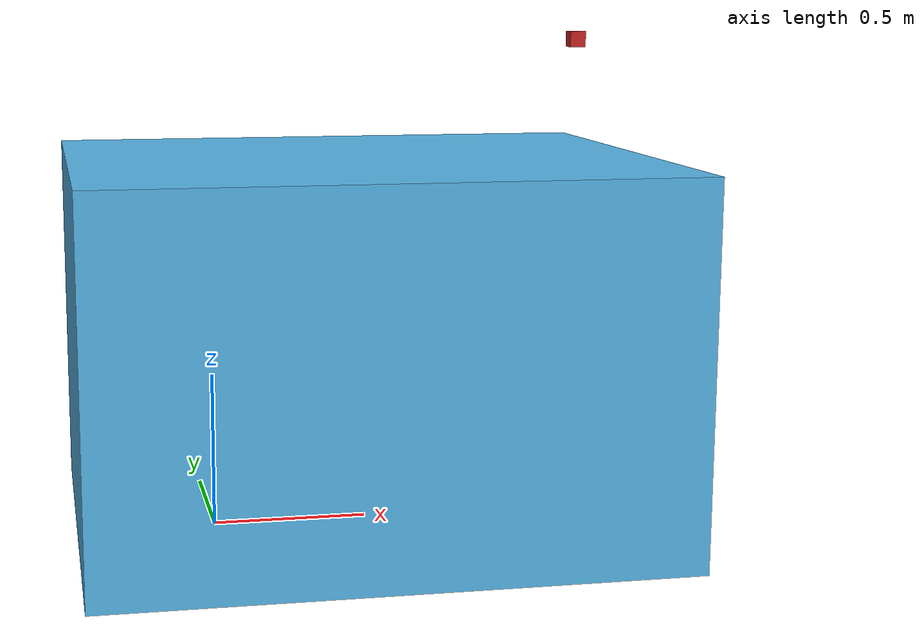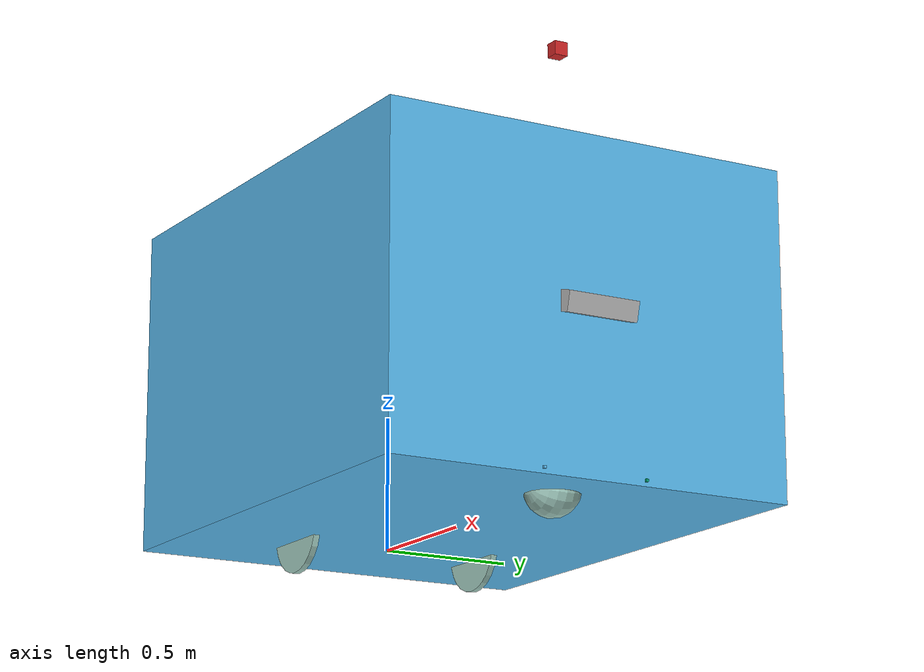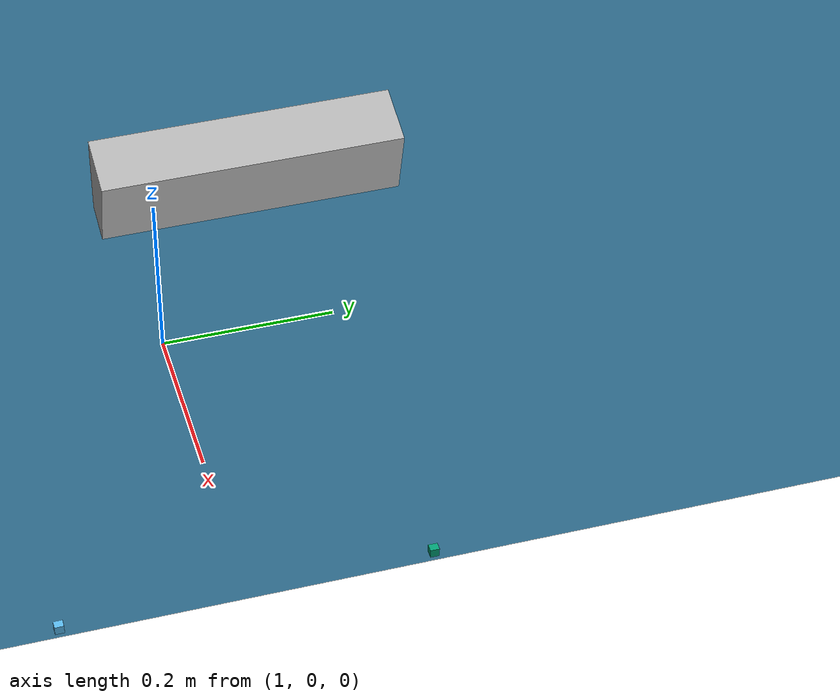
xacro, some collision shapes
<?xml version="1.0" ?>
<robot name="sweeper"
  xmlns:xacro="http://ros.org/wiki/xacro">
  <xacro:include filename="$(find custom_description)/description/sweeper/urdf/sweeper_base.urdf.xacro" />
  <sweeper_base wheel_separation="0.74" wheel_radius="0.15" base_diameter="0.3485">

  </sweeper_base>
  <range_sensor name="front_right_sensor" parent="base_link" ros_topic="/front_right_range" update_rate="10" min_range="0.0160" max_range="2" field_of_view="${60*3.1415926/180}" ray_count="1" type="ultrasound">
    <origin xyz="1.41 -0.2 0" rpy="0 0 0" />
  </range_sensor>
  <range_sensor name="front_left_sensor" parent="base_link" ros_topic="/front_left_range" update_rate="10" min_range="0.0160" max_range="2" field_of_view="${60*3.1415926/180}" ray_count="1" type="ultrasound">
    <origin xyz="1.41 0.20 0" rpy="0 0 0" />
  </range_sensor>
  <range_sensor name="left_sensor" parent="base_link" ros_topic="/left_range" update_rate="10" min_range="0.02" max_range="2" field_of_view="${30*3.1415926/180}" ray_count="1">
    <origin xyz="0.88 0.76 0.26" rpy="0 0 ${90*3.1415926/180}" />
  </range_sensor>
    <range_sensor name="right_sensor" parent="base_link" ros_topic="/right_range" update_rate="10" min_range="0.02" max_range="2" field_of_view="${30*3.1415926/180}" ray_count="1">
    <origin xyz="0.88 -0.76 0.26" rpy="0 0 ${-90*3.1415926/180}" />
  </range_sensor>
  <sensor_kinect parent="base_link">
    <origin xyz="1.45 0 0.58" rpy="0 0.261 0" />
  </sensor_kinect>

	<!--  lidar -->
	<sensor_rplidar parent="base_link">
		<origin xyz="1.2 0.0 1.55" rpy="0 0.0 0.0" />
	</sensor_rplidar>
</robot>

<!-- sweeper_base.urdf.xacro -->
<robot name="sweeper"
  xmlns:xacro="http://ros.org/wiki/xacro">

  <xacro:include filename="$(find custom_description)/description/lidar.urdf.xacro" />
  <xacro:include filename="$(find custom_description)/description/sweeper/urdf/sweeper_base_gazebo.urdf.xacro" />
  <xacro:include filename="$(find custom_description)/description/range_sensor.urdf.xacro" />
  <xacro:include filename="$(find custom_description)/description/kinect.urdf.xacro" />
  <xacro:property name="PI" value="3.1415926535897931" />
  <xacro:macro name="sweeper_wheel" params="prefix y_offset wheel_radius wheel_width">
    <link name="${prefix}_wheel_link">
      <inertial>
        <origin xyz="0 0 0" />
        <mass value="0.01" />
        <inertia ixx="0.001" ixy="0.0" ixz="0.0" iyy="0.001" iyz="0.0" izz="0.001" />
      </inertial>
      <visual>
        <origin xyz="0 0 0" rpy="0 ${PI/2} ${PI/2}" />
        <geometry>
          <cylinder radius="${wheel_radius}" length="${wheel_width}" />
        </geometry>
        <material name="material">
          <color rgba="0.635 0.800 0.754 1"/>
        </material>
      </visual>
      <collision>
        <origin xyz="0 0 0" rpy="0 ${PI/2} ${PI/2}" />
        <geometry>
          <cylinder radius="${wheel_radius}" length="${wheel_width}" />
        </geometry>

      </collision>
    </link>
    <joint name="${prefix}_wheel_joint" type="continuous">
      <origin xyz="0 ${y_offset} 0.015" rpy="0 0 0" />
      <parent link="base_link" />
      <child link="${prefix}_wheel_link" />
      <axis xyz="0 1 0" />
    </joint>
  </xacro:macro>
  <xacro:macro name="sweeper_base" params="diffdrive_update_rate:=40 wheel_separation wheel_radius:=0.036 wheel_width:=0.024 wheel_torque:=1.0 wheel_accel:=1.8 mass_kg:=3.5 base_diameter">
    <link name="base_footprint">
      <visual>
        <origin xyz="0 0 0" rpy="0 0 0" />
        <geometry>
          <box size="0.001 0.001 0.001" />
        </geometry>
        <material name="Green" />
      </visual>
      <collision>
        <origin xyz="0 0 0.017" rpy="0 0 0" />
        <geometry>
          <box size="0.001 0.001 0.001" />
        </geometry>
      </collision>
    </link>
    <link name="base_link">
      <inertial>
        <origin xyz="0.01 0 0" />
        <mass value="2.4" />
        <inertia ixx="0.019995" ixy="0.0" ixz="0.0" iyy="0.019995" iyz="0.0" izz="0.03675" />
      </inertial>
      <visual>
        <origin xyz=" 0 0 0.0308" rpy="0 0 0" />
        <geometry>
          <mesh filename="package://custom_description/description/sweeper/meshes/car1.dae" />
        </geometry>
      </visual>
      <collision>
        <origin xyz="0.48 0 0.58" rpy="0 0 0" />
        <geometry>
          <box size="1.852 1.559 1.2" />
        </geometry>
      </collision>
    </link>
    <link name="left_cliff_sensor_link">
      <inertial>
        <mass value="0.01" />
        <origin xyz="0 0 0" />
        <inertia ixx="0.001" ixy="0.0" ixz="0.0" iyy="0.001" iyz="0.0" izz="0.001" />
      </inertial>
    </link>
    <link name="right_cliff_sensor_link">
      <inertial>
        <mass value="0.01" />
        <origin xyz="0 0 0" />
        <inertia ixx="0.001" ixy="0.0" ixz="0.0" iyy="0.001" iyz="0.0" izz="0.001" />
      </inertial>
    </link>
    <link name="front_cliff_sensor_link">
      <inertial>
        <mass value="0.01" />
        <origin xyz="0 0 0" />
        <inertia ixx="0.001" ixy="0.0" ixz="0.0" iyy="0.001" iyz="0.0" izz="0.001" />
      </inertial>
    </link>
    <joint name="base_footprint_joint" type="fixed">
      <origin xyz="0 0 0.017" rpy="0 0 0" />
      <parent link="base_footprint" />
      <child link="base_link" />
    </joint>
    <joint name="base_left_cliff_sensor_joint" type="fixed">
      <origin xyz="0.07 0.14 0.01" rpy="0 ${PI/2} 0" />
      <parent link="base_link" />
      <child link="left_cliff_sensor_link" />
    </joint>
    <joint name="base_right_cliff_sensor_joint" type="fixed">
      <origin xyz="0.07 -0.14 0.01" rpy="0 ${PI/2} 0" />
      <parent link="base_link" />
      <child link="right_cliff_sensor_link" />
    </joint>
    <joint name="base_front_cliff_sensor_joint" type="fixed">
      <origin xyz="0.15 0.0 0.01" rpy="0 ${PI/2} 0" />
      <parent link="base_link" />
      <child link="front_cliff_sensor_link" />
    </joint>
    <xacro:sweeper_wheel prefix="left" y_offset="${wheel_separation / 2}" wheel_radius="${wheel_radius}" wheel_width="${wheel_width}"/>
    <xacro:sweeper_wheel prefix="right" y_offset="${wheel_separation / -2}" wheel_radius="${wheel_radius}" wheel_width="${wheel_width}"/>
    <link name="front_wheel_link">
      <inertial>
        <origin xyz="0 0 0" />
        <mass value="1" />
        <inertia ixx="0.001" ixy="0.0" ixz="0.0" iyy="0.001" iyz="0.0" izz="0.001" />
      </inertial>
      <visual>
        <origin xyz="0 0 0" rpy="0 ${PI/2} ${PI/2}" />
        <geometry>
          <sphere radius="0.1" />
        </geometry>
        <material name="material">
          <color rgba="0.635 0.800 0.754 1"/>
        </material>
      </visual>
      <collision>
        <origin xyz="0 0 0" rpy="0 ${PI/2} ${PI/2}" />
        <geometry>
          <sphere radius="0.10" />
        </geometry>
      </collision>
    </link>
    <!-- fixed because there's no transmission -->
    <joint name="front_castor_joint" type="fixed">
      <origin xyz="1.14 0 0.0" rpy="0 0 0" />
      <parent link="base_link" />
      <child link="front_wheel_link" />
      <axis xyz="0 1 0" />
    </joint>
    <joint name="gyro_joint" type="fixed">
      <axis xyz="0 1 0" />
      <origin xyz="0 0 0.04" rpy="0 0 0" />
      <parent link="base_link" />
      <child link="gyro_link" />
    </joint>
    <link name="gyro_link">
      <inertial>
        <mass value="0.001" />
        <origin xyz="0 0 0" rpy="0 0 0" />
        <inertia ixx="0.0001" ixy="0" ixz="0" iyy="0.000001" iyz="0" izz="0.0001" />
      </inertial>
    </link>
    <!-- Simulation sensors -->
    <sim_sweeper_base/>
  </xacro:macro>
</robot>

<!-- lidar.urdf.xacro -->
<robot xmlns:xacro="http://www.ros.org/wiki/xacro">
<!-- RPLidar 2D LIDAR -->
<xacro:macro name="sensor_rplidar" params="*origin parent:=base_link max_range:=10.1">
    <joint name="laser" type="fixed">
      <xacro:insert_block name="origin" />
      <parent link="${parent}" />
      <child link="base_laser_link" />
    </joint>

    <link name="base_laser_link">
      <visual>
        <geometry>
          <box size="0.05 0.05 0.05" />
        </geometry>
        <material name="Red" />
      </visual>
      <inertial>
        <mass value="0.000001" />
        <origin xyz="0 0 0" />
        <inertia ixx="0.0001" ixy="0.0" ixz="0.0"
          iyy="0.0001" iyz="0.0"
          izz="0.0001" />
      </inertial>
    </link>

    <!-- Set up laser gazebo details -->
    <gazebo reference="base_laser_link">
      <sensor type="ray" name="laser">
        <pose>0 0 0 0 0 0</pose>
        <visualize>true</visualize>
        <update_rate>6</update_rate>
        <ray>
          <scan>
            <horizontal>
              <samples>360</samples>
              <resolution>1</resolution>
              <min_angle>-3.1415926</min_angle>
              <max_angle>3.1415926</max_angle>
            </horizontal>
          </scan>
          <range>
            <min>0.10</min>
            <max>${max_range}</max>
            <resolution>0.01</resolution>
          </range>
          <noise>
            <type>Gaussian</type>
            <mean>0.0</mean>
            <stddev>0.01</stddev>
          </noise>
        </ray>
        <plugin name="rplidar_node" filename="libgazebo_ros_laser.so">
          <topicName>/laser_scan</topicName>
          <frameName>base_laser_link</frameName>
        </plugin>
      </sensor>
    </gazebo>
  </xacro:macro>
</robot>

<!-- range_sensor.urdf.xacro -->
<robot xmlns:xacro="http://www.ros.org/wiki/xacro">
  <xacro:macro name="range_sensor" params="name parent *origin ros_topic update_rate min_range max_range field_of_view ray_count type:=ultrasound">
    <joint name="${name}_joint" type="fixed">
      <xacro:insert_block name="origin" />
      <parent link="${parent}"/>
      <child link="${name}_link"/>
    </joint>

    <link name="${name}_link">
      <inertial>
        <mass value="0.001" />
        <origin xyz="0 0 0" rpy="0 0 0" />
        <inertia ixx="0.000000017" ixy="0" ixz="0" iyy="0.000000017" iyz="0" izz="0.000000017" />
      </inertial>
      <visual>
        <origin xyz="0 0 0" rpy="0 0 0" />
        <geometry>
          <box size="0.01 0.01 0.01" />
        </geometry>
      </visual>
      <collision>
        <origin xyz="0 0 0" rpy="0 0 0" />
        <geometry>
          <box size="0.01 0.01 0.01" />
        </geometry>
      </collision>
    </link>

    <gazebo reference="${name}_link">
      <sensor type="ray" name="${name}">
        <always_on>true</always_on>
        <update_rate>${update_rate}</update_rate>
        <pose>0 0 0 0 0 0</pose>
        <visualize>false</visualize>
        <ray>
          <scan>
            <horizontal>
              <samples>${ray_count}</samples>
              <resolution>1</resolution>
              <min_angle>-${field_of_view/2}</min_angle>
              <max_angle> ${field_of_view/2}</max_angle>
            </horizontal>
          </scan>
          <range>
            <min>${min_range}</min>
            <max>${max_range}</max>
            <resolution>0.01</resolution>
          </range>
        </ray>

        <plugin name="gazebo_ros_${name}_controller" filename="libgazebo_ros_range.so">
          <fov>${field_of_view}</fov>
          <updateRate>${update_rate}</updateRate>
          <gaussianNoise>0.01</gaussianNoise>
          <topicName>${ros_topic}</topicName>
          <frameName>${name}_link</frameName>
          <radiation>${type}</radiation>
        </plugin>
      </sensor>
    </gazebo>
  </xacro:macro>
</robot>

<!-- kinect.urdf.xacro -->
<robot
  xmlns:xacro="http://ros.org/wiki/xacro">
  <xacro:include filename="$(find custom_description)/description/common_properties.urdf.xacro" />
  <xacro:property name="kinect_cam_py" value="-0.0125"/>
  <!-- Parameterised in part by the values in turtlebot_properties.urdf.xacro -->
  <xacro:macro name="sensor_kinect" params="parent *origin">
    <joint name="camera_rgb_joint" type="fixed">
      <xacro:insert_block name="origin" />
      <parent link="${parent}"/>
      <child link="camera_rgb_frame" />
    </joint>
    <link name="camera_rgb_frame"/>
    <joint name="camera_rgb_optical_joint" type="fixed">
      <origin xyz="0 0 0" rpy="${-M_PI/2} 0 ${-M_PI/2}" />
      <parent link="camera_rgb_frame" />
      <child link="camera_rgb_optical_frame" />
    </joint>
    <link name="camera_rgb_optical_frame"/>
    <joint name="camera_joint" type="fixed">
      <origin xyz="-0.031 ${-kinect_cam_py} -0.016" rpy="0 0 0"/>
      <parent link="camera_rgb_frame"/>
      <child link="camera_link"/>
    </joint>
    <link name="camera_link">
      <visual>
        <origin xyz="0 0 0" rpy="0 0 ${M_PI/2}"/>
        <geometry>
          <mesh filename="package://custom_description/description/meshes/sensors/kinect.dae"/>
        </geometry>
      </visual>
      <collision>
        <origin xyz="0.0 0.0 0.0" rpy="0 0 0"/>
        <geometry>
          <box size="0.07271 0.27794 0.073"/>
        </geometry>
      </collision>
      <inertial>
        <mass value="0.564" />
        <origin xyz="0 0 0" />
        <inertia ixx="0.003881243" ixy="0.0" ixz="0.0" iyy="0.000498940" iyz="0.0" izz="0.003879257" />
      </inertial>
    </link>
    <joint name="camera_depth_joint" type="fixed">
      <origin xyz="0 ${2 * -kinect_cam_py} 0" rpy="0 0 0" />
      <parent link="camera_rgb_frame" />
      <child link="camera_depth_frame" />
    </joint>
    <link name="camera_depth_frame"/>
    <joint name="camera_depth_optical_joint" type="fixed">
      <origin xyz="0 0 0" rpy="${-M_PI/2} 0 ${-M_PI/2}" />
      <parent link="camera_depth_frame" />
      <child link="camera_depth_optical_frame" />
    </joint>
    <link name="camera_depth_optical_frame"/>
    <!-- Kinect sensor for simulation -->
    <gazebo reference="camera_link">
      <sensor type="depth" name="camera">
        <always_on>true</always_on>
        <update_rate>20.0</update_rate>
        <camera>
          <horizontal_fov>${60.0*M_PI/180.0}</horizontal_fov>
          <image>
            <format>B8G8R8</format>
            <width>640</width>
            <height>480</height>
          </image>
          <clip>
            <near>0.05</near>
            <far>8.0</far>
          </clip>
        </camera>
        <plugin name="kinect_camera_controller" filename="libgazebo_ros_openni_kinect.so">
          <cameraName>camera</cameraName>
          <alwaysOn>true</alwaysOn>
          <updateRate>10</updateRate>
          <imageTopicName>rgb/image_raw</imageTopicName>
          <depthImageTopicName>depth/image_raw</depthImageTopicName>
          <pointCloudTopicName>depth/points</pointCloudTopicName>
          <cameraInfoTopicName>rgb/camera_info</cameraInfoTopicName>
          <depthImageCameraInfoTopicName>depth/camera_info</depthImageCameraInfoTopicName>
          <frameName>camera_depth_optical_frame</frameName>
          <baseline>0.1</baseline>
          <distortion_k1>0.0</distortion_k1>
          <distortion_k2>0.0</distortion_k2>
          <distortion_k3>0.0</distortion_k3>
          <distortion_t1>0.0</distortion_t1>
          <distortion_t2>0.0</distortion_t2>
          <pointCloudCutoff>0.4</pointCloudCutoff>
        </plugin>
      </sensor>
    </gazebo>
  </xacro:macro>
</robot>
